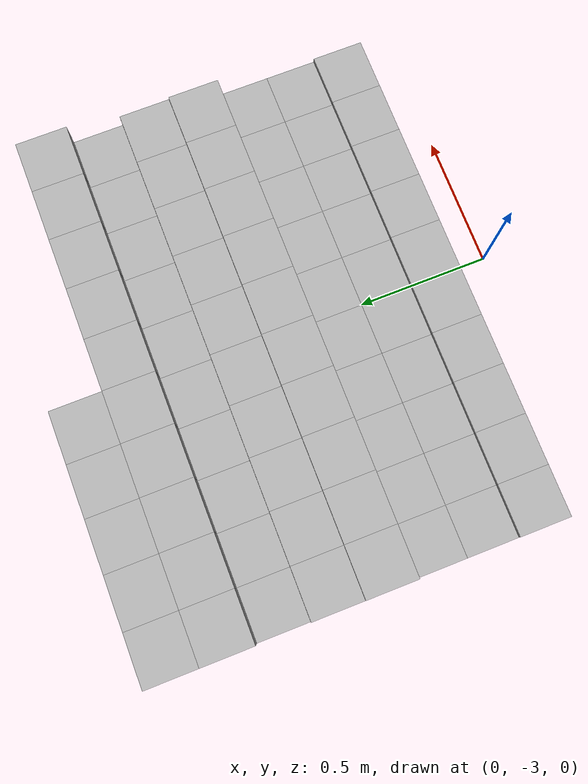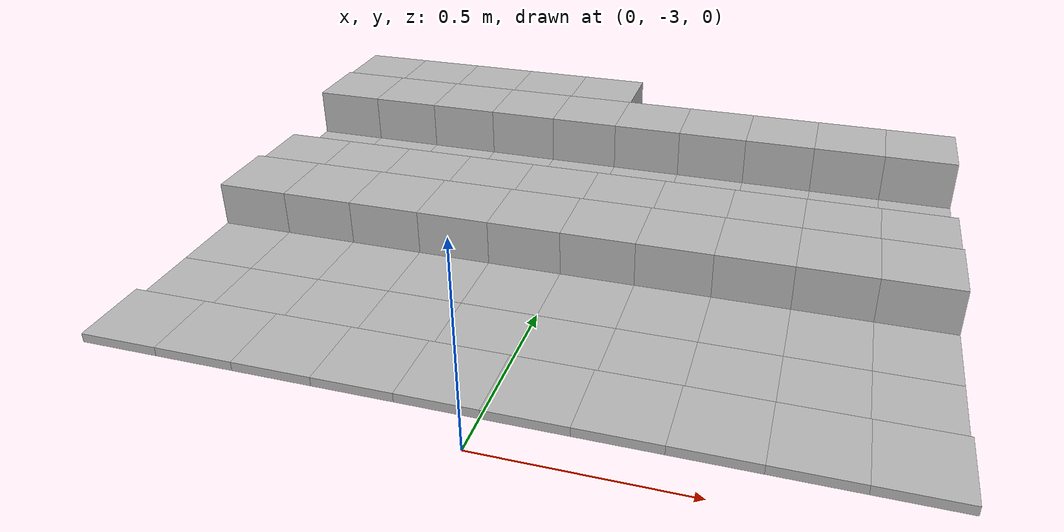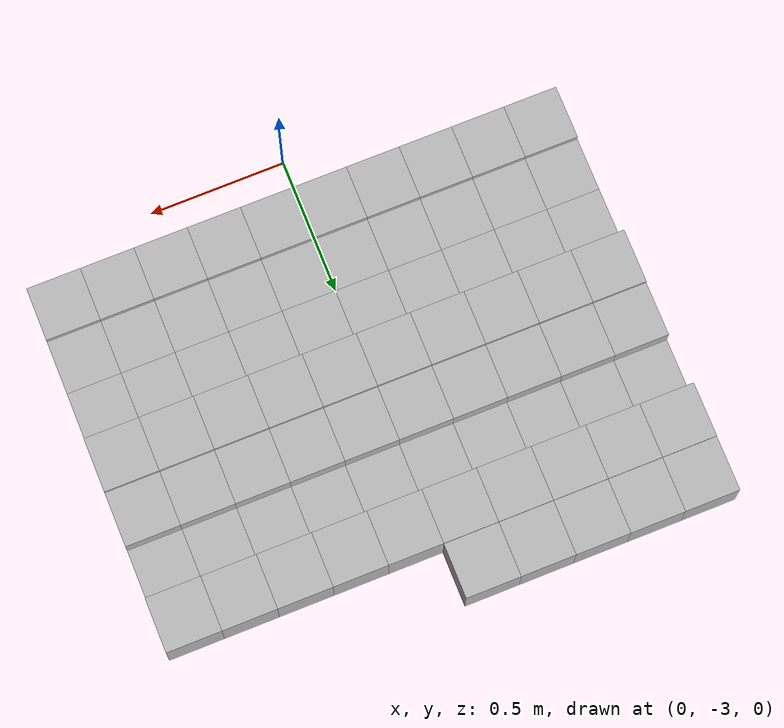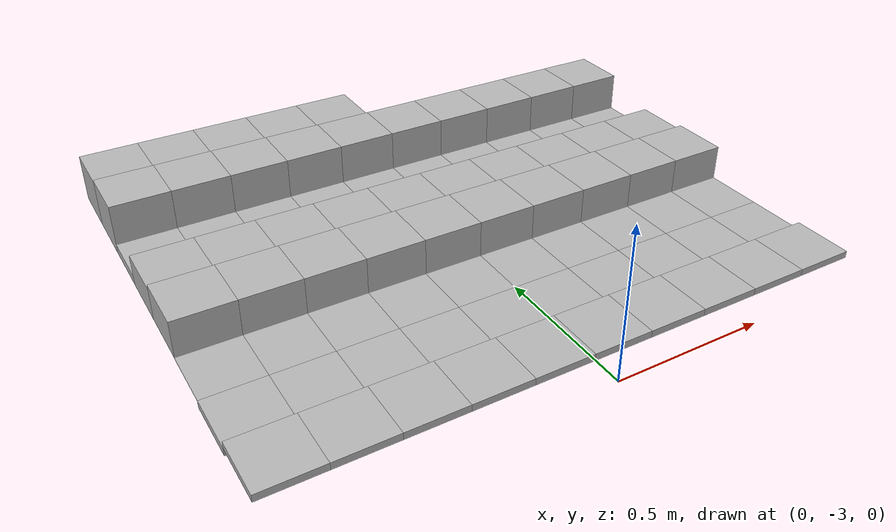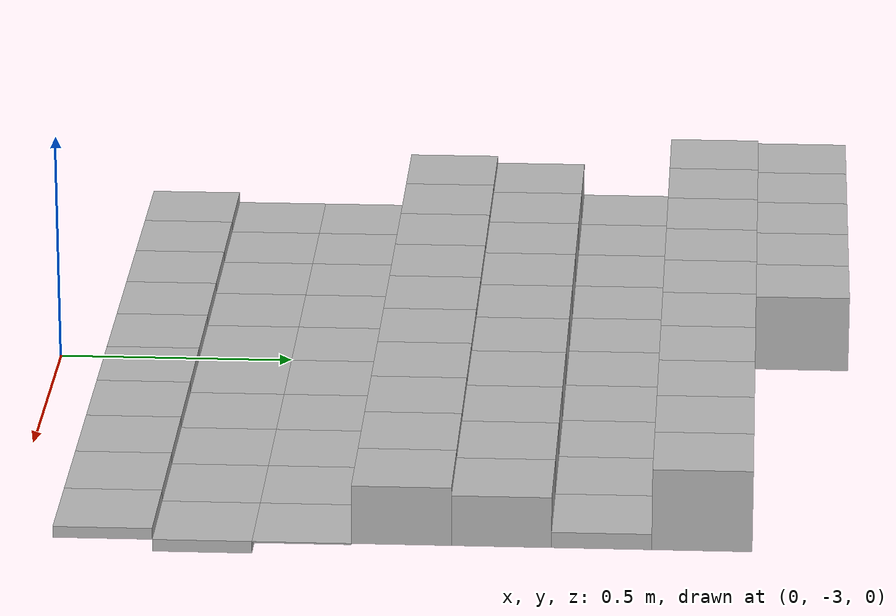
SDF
<sdf version="1.6">
 <model name="Terrain">
  <static>true</static>
  <link name="box_7_0">
   <pose>-0.9 -1.4 0.0830524998961 0 0 0</pose>
   <inertial>
    <mass>1.0</mass>
    <inertia><ixx>0.0</ixx><ixy>0.0</ixy><ixz>0.0</ixz><iyy>0.0</iyy><iyz>0.0</iyz><izz>0.0</izz></inertia>
   </inertial>
   <collision name="collision"><geometry><box><size>0.2 0.2 0.166104999792</size></box></geometry></collision>
   <visual name="visual"><geometry><box><size>0.2 0.2 0.166104999792</size></box></geometry></visual>
  </link>
  <link name="box_7_1">
   <pose>-0.7 -1.4 0.0830524998961 0 0 0</pose>
   <inertial>
    <mass>1.0</mass>
    <inertia><ixx>0.0</ixx><ixy>0.0</ixy><ixz>0.0</ixz><iyy>0.0</iyy><iyz>0.0</iyz><izz>0.0</izz></inertia>
   </inertial>
   <collision name="collision"><geometry><box><size>0.2 0.2 0.166104999792</size></box></geometry></collision>
   <visual name="visual"><geometry><box><size>0.2 0.2 0.166104999792</size></box></geometry></visual>
  </link>
  <link name="box_7_2">
   <pose>-0.5 -1.4 0.0830524998961 0 0 0</pose>
   <inertial>
    <mass>1.0</mass>
    <inertia><ixx>0.0</ixx><ixy>0.0</ixy><ixz>0.0</ixz><iyy>0.0</iyy><iyz>0.0</iyz><izz>0.0</izz></inertia>
   </inertial>
   <collision name="collision"><geometry><box><size>0.2 0.2 0.166104999792</size></box></geometry></collision>
   <visual name="visual"><geometry><box><size>0.2 0.2 0.166104999792</size></box></geometry></visual>
  </link>
  <link name="box_7_3">
   <pose>-0.3 -1.4 0.0830524998961 0 0 0</pose>
   <inertial>
    <mass>1.0</mass>
    <inertia><ixx>0.0</ixx><ixy>0.0</ixy><ixz>0.0</ixz><iyy>0.0</iyy><iyz>0.0</iyz><izz>0.0</izz></inertia>
   </inertial>
   <collision name="collision"><geometry><box><size>0.2 0.2 0.166104999792</size></box></geometry></collision>
   <visual name="visual"><geometry><box><size>0.2 0.2 0.166104999792</size></box></geometry></visual>
  </link>
  <link name="box_7_4">
   <pose>-0.1 -1.4 0.0830524998961 0 0 0</pose>
   <inertial>
    <mass>1.0</mass>
    <inertia><ixx>0.0</ixx><ixy>0.0</ixy><ixz>0.0</ixz><iyy>0.0</iyy><iyz>0.0</iyz><izz>0.0</izz></inertia>
   </inertial>
   <collision name="collision"><geometry><box><size>0.2 0.2 0.166104999792</size></box></geometry></collision>
   <visual name="visual"><geometry><box><size>0.2 0.2 0.166104999792</size></box></geometry></visual>
  </link>
  <link name="box_8_0">
   <pose>-0.9 -1.6 0.0862978659999 0 0 0</pose>
   <inertial>
    <mass>1.0</mass>
    <inertia><ixx>0.0</ixx><ixy>0.0</ixy><ixz>0.0</ixz><iyy>0.0</iyy><iyz>0.0</iyz><izz>0.0</izz></inertia>
   </inertial>
   <collision name="collision"><geometry><box><size>0.2 0.2 0.172595732</size></box></geometry></collision>
   <visual name="visual"><geometry><box><size>0.2 0.2 0.172595732</size></box></geometry></visual>
  </link>
  <link name="box_8_1">
   <pose>-0.7 -1.6 0.0862978659999 0 0 0</pose>
   <inertial>
    <mass>1.0</mass>
    <inertia><ixx>0.0</ixx><ixy>0.0</ixy><ixz>0.0</ixz><iyy>0.0</iyy><iyz>0.0</iyz><izz>0.0</izz></inertia>
   </inertial>
   <collision name="collision"><geometry><box><size>0.2 0.2 0.172595732</size></box></geometry></collision>
   <visual name="visual"><geometry><box><size>0.2 0.2 0.172595732</size></box></geometry></visual>
  </link>
  <link name="box_8_2">
   <pose>-0.5 -1.6 0.0862978659999 0 0 0</pose>
   <inertial>
    <mass>1.0</mass>
    <inertia><ixx>0.0</ixx><ixy>0.0</ixy><ixz>0.0</ixz><iyy>0.0</iyy><iyz>0.0</iyz><izz>0.0</izz></inertia>
   </inertial>
   <collision name="collision"><geometry><box><size>0.2 0.2 0.172595732</size></box></geometry></collision>
   <visual name="visual"><geometry><box><size>0.2 0.2 0.172595732</size></box></geometry></visual>
  </link>
  <link name="box_8_3">
   <pose>-0.3 -1.6 0.0862978659999 0 0 0</pose>
   <inertial>
    <mass>1.0</mass>
    <inertia><ixx>0.0</ixx><ixy>0.0</ixy><ixz>0.0</ixz><iyy>0.0</iyy><iyz>0.0</iyz><izz>0.0</izz></inertia>
   </inertial>
   <collision name="collision"><geometry><box><size>0.2 0.2 0.172595732</size></box></geometry></collision>
   <visual name="visual"><geometry><box><size>0.2 0.2 0.172595732</size></box></geometry></visual>
  </link>
  <link name="box_8_4">
   <pose>-0.1 -1.6 0.0862978659999 0 0 0</pose>
   <inertial>
    <mass>1.0</mass>
    <inertia><ixx>0.0</ixx><ixy>0.0</ixy><ixz>0.0</ixz><iyy>0.0</iyy><iyz>0.0</iyz><izz>0.0</izz></inertia>
   </inertial>
   <collision name="collision"><geometry><box><size>0.2 0.2 0.172595732</size></box></geometry></collision>
   <visual name="visual"><geometry><box><size>0.2 0.2 0.172595732</size></box></geometry></visual>
  </link>
  <link name="box_8_5">
   <pose>0.1 -1.6 0.0862978659999 0 0 0</pose>
   <inertial>
    <mass>1.0</mass>
    <inertia><ixx>0.0</ixx><ixy>0.0</ixy><ixz>0.0</ixz><iyy>0.0</iyy><iyz>0.0</iyz><izz>0.0</izz></inertia>
   </inertial>
   <collision name="collision"><geometry><box><size>0.2 0.2 0.172595732</size></box></geometry></collision>
   <visual name="visual"><geometry><box><size>0.2 0.2 0.172595732</size></box></geometry></visual>
  </link>
  <link name="box_8_6">
   <pose>0.3 -1.6 0.0862978659999 0 0 0</pose>
   <inertial>
    <mass>1.0</mass>
    <inertia><ixx>0.0</ixx><ixy>0.0</ixy><ixz>0.0</ixz><iyy>0.0</iyy><iyz>0.0</iyz><izz>0.0</izz></inertia>
   </inertial>
   <collision name="collision"><geometry><box><size>0.2 0.2 0.172595732</size></box></geometry></collision>
   <visual name="visual"><geometry><box><size>0.2 0.2 0.172595732</size></box></geometry></visual>
  </link>
  <link name="box_8_7">
   <pose>0.5 -1.6 0.0862978659999 0 0 0</pose>
   <inertial>
    <mass>1.0</mass>
    <inertia><ixx>0.0</ixx><ixy>0.0</ixy><ixz>0.0</ixz><iyy>0.0</iyy><iyz>0.0</iyz><izz>0.0</izz></inertia>
   </inertial>
   <collision name="collision"><geometry><box><size>0.2 0.2 0.172595732</size></box></geometry></collision>
   <visual name="visual"><geometry><box><size>0.2 0.2 0.172595732</size></box></geometry></visual>
  </link>
  <link name="box_8_8">
   <pose>0.7 -1.6 0.0862978659999 0 0 0</pose>
   <inertial>
    <mass>1.0</mass>
    <inertia><ixx>0.0</ixx><ixy>0.0</ixy><ixz>0.0</ixz><iyy>0.0</iyy><iyz>0.0</iyz><izz>0.0</izz></inertia>
   </inertial>
   <collision name="collision"><geometry><box><size>0.2 0.2 0.172595732</size></box></geometry></collision>
   <visual name="visual"><geometry><box><size>0.2 0.2 0.172595732</size></box></geometry></visual>
  </link>
  <link name="box_8_9">
   <pose>0.9 -1.6 0.0862978659999 0 0 0</pose>
   <inertial>
    <mass>1.0</mass>
    <inertia><ixx>0.0</ixx><ixy>0.0</ixy><ixz>0.0</ixz><iyy>0.0</iyy><iyz>0.0</iyz><izz>0.0</izz></inertia>
   </inertial>
   <collision name="collision"><geometry><box><size>0.2 0.2 0.172595732</size></box></geometry></collision>
   <visual name="visual"><geometry><box><size>0.2 0.2 0.172595732</size></box></geometry></visual>
  </link>
  <link name="box_9_0">
   <pose>-0.9 -1.8 0.016583812479 0 0 0</pose>
   <inertial>
    <mass>1.0</mass>
    <inertia><ixx>0.0</ixx><ixy>0.0</ixy><ixz>0.0</ixz><iyy>0.0</iyy><iyz>0.0</iyz><izz>0.0</izz></inertia>
   </inertial>
   <collision name="collision"><geometry><box><size>0.2 0.2 0.0331676249579</size></box></geometry></collision>
   <visual name="visual"><geometry><box><size>0.2 0.2 0.0331676249579</size></box></geometry></visual>
  </link>
  <link name="box_9_1">
   <pose>-0.7 -1.8 0.016583812479 0 0 0</pose>
   <inertial>
    <mass>1.0</mass>
    <inertia><ixx>0.0</ixx><ixy>0.0</ixy><ixz>0.0</ixz><iyy>0.0</iyy><iyz>0.0</iyz><izz>0.0</izz></inertia>
   </inertial>
   <collision name="collision"><geometry><box><size>0.2 0.2 0.0331676249579</size></box></geometry></collision>
   <visual name="visual"><geometry><box><size>0.2 0.2 0.0331676249579</size></box></geometry></visual>
  </link>
  <link name="box_9_2">
   <pose>-0.5 -1.8 0.016583812479 0 0 0</pose>
   <inertial>
    <mass>1.0</mass>
    <inertia><ixx>0.0</ixx><ixy>0.0</ixy><ixz>0.0</ixz><iyy>0.0</iyy><iyz>0.0</iyz><izz>0.0</izz></inertia>
   </inertial>
   <collision name="collision"><geometry><box><size>0.2 0.2 0.0331676249579</size></box></geometry></collision>
   <visual name="visual"><geometry><box><size>0.2 0.2 0.0331676249579</size></box></geometry></visual>
  </link>
  <link name="box_9_3">
   <pose>-0.3 -1.8 0.016583812479 0 0 0</pose>
   <inertial>
    <mass>1.0</mass>
    <inertia><ixx>0.0</ixx><ixy>0.0</ixy><ixz>0.0</ixz><iyy>0.0</iyy><iyz>0.0</iyz><izz>0.0</izz></inertia>
   </inertial>
   <collision name="collision"><geometry><box><size>0.2 0.2 0.0331676249579</size></box></geometry></collision>
   <visual name="visual"><geometry><box><size>0.2 0.2 0.0331676249579</size></box></geometry></visual>
  </link>
  <link name="box_9_4">
   <pose>-0.1 -1.8 0.016583812479 0 0 0</pose>
   <inertial>
    <mass>1.0</mass>
    <inertia><ixx>0.0</ixx><ixy>0.0</ixy><ixz>0.0</ixz><iyy>0.0</iyy><iyz>0.0</iyz><izz>0.0</izz></inertia>
   </inertial>
   <collision name="collision"><geometry><box><size>0.2 0.2 0.0331676249579</size></box></geometry></collision>
   <visual name="visual"><geometry><box><size>0.2 0.2 0.0331676249579</size></box></geometry></visual>
  </link>
  <link name="box_9_5">
   <pose>0.1 -1.8 0.016583812479 0 0 0</pose>
   <inertial>
    <mass>1.0</mass>
    <inertia><ixx>0.0</ixx><ixy>0.0</ixy><ixz>0.0</ixz><iyy>0.0</iyy><iyz>0.0</iyz><izz>0.0</izz></inertia>
   </inertial>
   <collision name="collision"><geometry><box><size>0.2 0.2 0.0331676249579</size></box></geometry></collision>
   <visual name="visual"><geometry><box><size>0.2 0.2 0.0331676249579</size></box></geometry></visual>
  </link>
  <link name="box_9_6">
   <pose>0.3 -1.8 0.016583812479 0 0 0</pose>
   <inertial>
    <mass>1.0</mass>
    <inertia><ixx>0.0</ixx><ixy>0.0</ixy><ixz>0.0</ixz><iyy>0.0</iyy><iyz>0.0</iyz><izz>0.0</izz></inertia>
   </inertial>
   <collision name="collision"><geometry><box><size>0.2 0.2 0.0331676249579</size></box></geometry></collision>
   <visual name="visual"><geometry><box><size>0.2 0.2 0.0331676249579</size></box></geometry></visual>
  </link>
  <link name="box_9_7">
   <pose>0.5 -1.8 0.016583812479 0 0 0</pose>
   <inertial>
    <mass>1.0</mass>
    <inertia><ixx>0.0</ixx><ixy>0.0</ixy><ixz>0.0</ixz><iyy>0.0</iyy><iyz>0.0</iyz><izz>0.0</izz></inertia>
   </inertial>
   <collision name="collision"><geometry><box><size>0.2 0.2 0.0331676249579</size></box></geometry></collision>
   <visual name="visual"><geometry><box><size>0.2 0.2 0.0331676249579</size></box></geometry></visual>
  </link>
  <link name="box_9_8">
   <pose>0.7 -1.8 0.016583812479 0 0 0</pose>
   <inertial>
    <mass>1.0</mass>
    <inertia><ixx>0.0</ixx><ixy>0.0</ixy><ixz>0.0</ixz><iyy>0.0</iyy><iyz>0.0</iyz><izz>0.0</izz></inertia>
   </inertial>
   <collision name="collision"><geometry><box><size>0.2 0.2 0.0331676249579</size></box></geometry></collision>
   <visual name="visual"><geometry><box><size>0.2 0.2 0.0331676249579</size></box></geometry></visual>
  </link>
  <link name="box_9_9">
   <pose>0.9 -1.8 0.016583812479 0 0 0</pose>
   <inertial>
    <mass>1.0</mass>
    <inertia><ixx>0.0</ixx><ixy>0.0</ixy><ixz>0.0</ixz><iyy>0.0</iyy><iyz>0.0</iyz><izz>0.0</izz></inertia>
   </inertial>
   <collision name="collision"><geometry><box><size>0.2 0.2 0.0331676249579</size></box></geometry></collision>
   <visual name="visual"><geometry><box><size>0.2 0.2 0.0331676249579</size></box></geometry></visual>
  </link>
  <link name="box_10_0">
   <pose>-0.9 -2.0 0.0538792934214 0 0 0</pose>
   <inertial>
    <mass>1.0</mass>
    <inertia><ixx>0.0</ixx><ixy>0.0</ixy><ixz>0.0</ixz><iyy>0.0</iyy><iyz>0.0</iyz><izz>0.0</izz></inertia>
   </inertial>
   <collision name="collision"><geometry><box><size>0.2 0.2 0.107758586843</size></box></geometry></collision>
   <visual name="visual"><geometry><box><size>0.2 0.2 0.107758586843</size></box></geometry></visual>
  </link>
  <link name="box_10_1">
   <pose>-0.7 -2.0 0.0538792934214 0 0 0</pose>
   <inertial>
    <mass>1.0</mass>
    <inertia><ixx>0.0</ixx><ixy>0.0</ixy><ixz>0.0</ixz><iyy>0.0</iyy><iyz>0.0</iyz><izz>0.0</izz></inertia>
   </inertial>
   <collision name="collision"><geometry><box><size>0.2 0.2 0.107758586843</size></box></geometry></collision>
   <visual name="visual"><geometry><box><size>0.2 0.2 0.107758586843</size></box></geometry></visual>
  </link>
  <link name="box_10_2">
   <pose>-0.5 -2.0 0.0538792934214 0 0 0</pose>
   <inertial>
    <mass>1.0</mass>
    <inertia><ixx>0.0</ixx><ixy>0.0</ixy><ixz>0.0</ixz><iyy>0.0</iyy><iyz>0.0</iyz><izz>0.0</izz></inertia>
   </inertial>
   <collision name="collision"><geometry><box><size>0.2 0.2 0.107758586843</size></box></geometry></collision>
   <visual name="visual"><geometry><box><size>0.2 0.2 0.107758586843</size></box></geometry></visual>
  </link>
  <link name="box_10_3">
   <pose>-0.3 -2.0 0.0538792934214 0 0 0</pose>
   <inertial>
    <mass>1.0</mass>
    <inertia><ixx>0.0</ixx><ixy>0.0</ixy><ixz>0.0</ixz><iyy>0.0</iyy><iyz>0.0</iyz><izz>0.0</izz></inertia>
   </inertial>
   <collision name="collision"><geometry><box><size>0.2 0.2 0.107758586843</size></box></geometry></collision>
   <visual name="visual"><geometry><box><size>0.2 0.2 0.107758586843</size></box></geometry></visual>
  </link>
  <link name="box_10_4">
   <pose>-0.1 -2.0 0.0538792934214 0 0 0</pose>
   <inertial>
    <mass>1.0</mass>
    <inertia><ixx>0.0</ixx><ixy>0.0</ixy><ixz>0.0</ixz><iyy>0.0</iyy><iyz>0.0</iyz><izz>0.0</izz></inertia>
   </inertial>
   <collision name="collision"><geometry><box><size>0.2 0.2 0.107758586843</size></box></geometry></collision>
   <visual name="visual"><geometry><box><size>0.2 0.2 0.107758586843</size></box></geometry></visual>
  </link>
  <link name="box_10_5">
   <pose>0.1 -2.0 0.0538792934214 0 0 0</pose>
   <inertial>
    <mass>1.0</mass>
    <inertia><ixx>0.0</ixx><ixy>0.0</ixy><ixz>0.0</ixz><iyy>0.0</iyy><iyz>0.0</iyz><izz>0.0</izz></inertia>
   </inertial>
   <collision name="collision"><geometry><box><size>0.2 0.2 0.107758586843</size></box></geometry></collision>
   <visual name="visual"><geometry><box><size>0.2 0.2 0.107758586843</size></box></geometry></visual>
  </link>
  <link name="box_10_6">
   <pose>0.3 -2.0 0.0538792934214 0 0 0</pose>
   <inertial>
    <mass>1.0</mass>
    <inertia><ixx>0.0</ixx><ixy>0.0</ixy><ixz>0.0</ixz><iyy>0.0</iyy><iyz>0.0</iyz><izz>0.0</izz></inertia>
   </inertial>
   <collision name="collision"><geometry><box><size>0.2 0.2 0.107758586843</size></box></geometry></collision>
   <visual name="visual"><geometry><box><size>0.2 0.2 0.107758586843</size></box></geometry></visual>
  </link>
  <link name="box_10_7">
   <pose>0.5 -2.0 0.0538792934214 0 0 0</pose>
   <inertial>
    <mass>1.0</mass>
    <inertia><ixx>0.0</ixx><ixy>0.0</ixy><ixz>0.0</ixz><iyy>0.0</iyy><iyz>0.0</iyz><izz>0.0</izz></inertia>
   </inertial>
   <collision name="collision"><geometry><box><size>0.2 0.2 0.107758586843</size></box></geometry></collision>
   <visual name="visual"><geometry><box><size>0.2 0.2 0.107758586843</size></box></geometry></visual>
  </link>
  <link name="box_10_8">
   <pose>0.7 -2.0 0.0538792934214 0 0 0</pose>
   <inertial>
    <mass>1.0</mass>
    <inertia><ixx>0.0</ixx><ixy>0.0</ixy><ixz>0.0</ixz><iyy>0.0</iyy><iyz>0.0</iyz><izz>0.0</izz></inertia>
   </inertial>
   <collision name="collision"><geometry><box><size>0.2 0.2 0.107758586843</size></box></geometry></collision>
   <visual name="visual"><geometry><box><size>0.2 0.2 0.107758586843</size></box></geometry></visual>
  </link>
  <link name="box_10_9">
   <pose>0.9 -2.0 0.0538792934214 0 0 0</pose>
   <inertial>
    <mass>1.0</mass>
    <inertia><ixx>0.0</ixx><ixy>0.0</ixy><ixz>0.0</ixz><iyy>0.0</iyy><iyz>0.0</iyz><izz>0.0</izz></inertia>
   </inertial>
   <collision name="collision"><geometry><box><size>0.2 0.2 0.107758586843</size></box></geometry></collision>
   <visual name="visual"><geometry><box><size>0.2 0.2 0.107758586843</size></box></geometry></visual>
  </link>
  <link name="box_11_0">
   <pose>-0.9 -2.2 0.0621558533466 0 0 0</pose>
   <inertial>
    <mass>1.0</mass>
    <inertia><ixx>0.0</ixx><ixy>0.0</ixy><ixz>0.0</ixz><iyy>0.0</iyy><iyz>0.0</iyz><izz>0.0</izz></inertia>
   </inertial>
   <collision name="collision"><geometry><box><size>0.2 0.2 0.124311706693</size></box></geometry></collision>
   <visual name="visual"><geometry><box><size>0.2 0.2 0.124311706693</size></box></geometry></visual>
  </link>
  <link name="box_11_1">
   <pose>-0.7 -2.2 0.0621558533466 0 0 0</pose>
   <inertial>
    <mass>1.0</mass>
    <inertia><ixx>0.0</ixx><ixy>0.0</ixy><ixz>0.0</ixz><iyy>0.0</iyy><iyz>0.0</iyz><izz>0.0</izz></inertia>
   </inertial>
   <collision name="collision"><geometry><box><size>0.2 0.2 0.124311706693</size></box></geometry></collision>
   <visual name="visual"><geometry><box><size>0.2 0.2 0.124311706693</size></box></geometry></visual>
  </link>
  <link name="box_11_2">
   <pose>-0.5 -2.2 0.0621558533466 0 0 0</pose>
   <inertial>
    <mass>1.0</mass>
    <inertia><ixx>0.0</ixx><ixy>0.0</ixy><ixz>0.0</ixz><iyy>0.0</iyy><iyz>0.0</iyz><izz>0.0</izz></inertia>
   </inertial>
   <collision name="collision"><geometry><box><size>0.2 0.2 0.124311706693</size></box></geometry></collision>
   <visual name="visual"><geometry><box><size>0.2 0.2 0.124311706693</size></box></geometry></visual>
  </link>
  <link name="box_11_3">
   <pose>-0.3 -2.2 0.0621558533466 0 0 0</pose>
   <inertial>
    <mass>1.0</mass>
    <inertia><ixx>0.0</ixx><ixy>0.0</ixy><ixz>0.0</ixz><iyy>0.0</iyy><iyz>0.0</iyz><izz>0.0</izz></inertia>
   </inertial>
   <collision name="collision"><geometry><box><size>0.2 0.2 0.124311706693</size></box></geometry></collision>
   <visual name="visual"><geometry><box><size>0.2 0.2 0.124311706693</size></box></geometry></visual>
  </link>
  <link name="box_11_4">
   <pose>-0.1 -2.2 0.0621558533466 0 0 0</pose>
   <inertial>
    <mass>1.0</mass>
    <inertia><ixx>0.0</ixx><ixy>0.0</ixy><ixz>0.0</ixz><iyy>0.0</iyy><iyz>0.0</iyz><izz>0.0</izz></inertia>
   </inertial>
   <collision name="collision"><geometry><box><size>0.2 0.2 0.124311706693</size></box></geometry></collision>
   <visual name="visual"><geometry><box><size>0.2 0.2 0.124311706693</size></box></geometry></visual>
  </link>
  <link name="box_11_5">
   <pose>0.1 -2.2 0.0621558533466 0 0 0</pose>
   <inertial>
    <mass>1.0</mass>
    <inertia><ixx>0.0</ixx><ixy>0.0</ixy><ixz>0.0</ixz><iyy>0.0</iyy><iyz>0.0</iyz><izz>0.0</izz></inertia>
   </inertial>
   <collision name="collision"><geometry><box><size>0.2 0.2 0.124311706693</size></box></geometry></collision>
   <visual name="visual"><geometry><box><size>0.2 0.2 0.124311706693</size></box></geometry></visual>
  </link>
  <link name="box_11_6">
   <pose>0.3 -2.2 0.0621558533466 0 0 0</pose>
   <inertial>
    <mass>1.0</mass>
    <inertia><ixx>0.0</ixx><ixy>0.0</ixy><ixz>0.0</ixz><iyy>0.0</iyy><iyz>0.0</iyz><izz>0.0</izz></inertia>
   </inertial>
   <collision name="collision"><geometry><box><size>0.2 0.2 0.124311706693</size></box></geometry></collision>
   <visual name="visual"><geometry><box><size>0.2 0.2 0.124311706693</size></box></geometry></visual>
  </link>
  <link name="box_11_7">
   <pose>0.5 -2.2 0.0621558533466 0 0 0</pose>
   <inertial>
    <mass>1.0</mass>
    <inertia><ixx>0.0</ixx><ixy>0.0</ixy><ixz>0.0</ixz><iyy>0.0</iyy><iyz>0.0</iyz><izz>0.0</izz></inertia>
   </inertial>
   <collision name="collision"><geometry><box><size>0.2 0.2 0.124311706693</size></box></geometry></collision>
   <visual name="visual"><geometry><box><size>0.2 0.2 0.124311706693</size></box></geometry></visual>
  </link>
  <link name="box_11_8">
   <pose>0.7 -2.2 0.0621558533466 0 0 0</pose>
   <inertial>
    <mass>1.0</mass>
    <inertia><ixx>0.0</ixx><ixy>0.0</ixy><ixz>0.0</ixz><iyy>0.0</iyy><iyz>0.0</iyz><izz>0.0</izz></inertia>
   </inertial>
   <collision name="collision"><geometry><box><size>0.2 0.2 0.124311706693</size></box></geometry></collision>
   <visual name="visual"><geometry><box><size>0.2 0.2 0.124311706693</size></box></geometry></visual>
  </link>
  <link name="box_11_9">
   <pose>0.9 -2.2 0.0621558533466 0 0 0</pose>
   <inertial>
    <mass>1.0</mass>
    <inertia><ixx>0.0</ixx><ixy>0.0</ixy><ixz>0.0</ixz><iyy>0.0</iyy><iyz>0.0</iyz><izz>0.0</izz></inertia>
   </inertial>
   <collision name="collision"><geometry><box><size>0.2 0.2 0.124311706693</size></box></geometry></collision>
   <visual name="visual"><geometry><box><size>0.2 0.2 0.124311706693</size></box></geometry></visual>
  </link>
  <link name="box_12_0">
   <pose>-0.9 -2.4 -0.0013841057599 0 0 0</pose>
   <inertial>
    <mass>1.0</mass>
    <inertia><ixx>0.0</ixx><ixy>0.0</ixy><ixz>0.0</ixz><iyy>0.0</iyy><iyz>0.0</iyz><izz>0.0</izz></inertia>
   </inertial>
   <collision name="collision"><geometry><box><size>0.2 0.2 -0.00276821151979</size></box></geometry></collision>
   <visual name="visual"><geometry><box><size>0.2 0.2 -0.00276821151979</size></box></geometry></visual>
  </link>
  <link name="box_12_1">
   <pose>-0.7 -2.4 -0.0013841057599 0 0 0</pose>
   <inertial>
    <mass>1.0</mass>
    <inertia><ixx>0.0</ixx><ixy>0.0</ixy><ixz>0.0</ixz><iyy>0.0</iyy><iyz>0.0</iyz><izz>0.0</izz></inertia>
   </inertial>
   <collision name="collision"><geometry><box><size>0.2 0.2 -0.00276821151979</size></box></geometry></collision>
   <visual name="visual"><geometry><box><size>0.2 0.2 -0.00276821151979</size></box></geometry></visual>
  </link>
  <link name="box_12_2">
   <pose>-0.5 -2.4 -0.0013841057599 0 0 0</pose>
   <inertial>
    <mass>1.0</mass>
    <inertia><ixx>0.0</ixx><ixy>0.0</ixy><ixz>0.0</ixz><iyy>0.0</iyy><iyz>0.0</iyz><izz>0.0</izz></inertia>
   </inertial>
   <collision name="collision"><geometry><box><size>0.2 0.2 -0.00276821151979</size></box></geometry></collision>
   <visual name="visual"><geometry><box><size>0.2 0.2 -0.00276821151979</size></box></geometry></visual>
  </link>
  <link name="box_12_3">
   <pose>-0.3 -2.4 -0.0013841057599 0 0 0</pose>
   <inertial>
    <mass>1.0</mass>
    <inertia><ixx>0.0</ixx><ixy>0.0</ixy><ixz>0.0</ixz><iyy>0.0</iyy><iyz>0.0</iyz><izz>0.0</izz></inertia>
   </inertial>
   <collision name="collision"><geometry><box><size>0.2 0.2 -0.00276821151979</size></box></geometry></collision>
   <visual name="visual"><geometry><box><size>0.2 0.2 -0.00276821151979</size></box></geometry></visual>
  </link>
  <link name="box_12_4">
   <pose>-0.1 -2.4 -0.0013841057599 0 0 0</pose>
   <inertial>
    <mass>1.0</mass>
    <inertia><ixx>0.0</ixx><ixy>0.0</ixy><ixz>0.0</ixz><iyy>0.0</iyy><iyz>0.0</iyz><izz>0.0</izz></inertia>
   </inertial>
   <collision name="collision"><geometry><box><size>0.2 0.2 -0.00276821151979</size></box></geometry></collision>
   <visual name="visual"><geometry><box><size>0.2 0.2 -0.00276821151979</size></box></geometry></visual>
  </link>
  <link name="box_12_5">
   <pose>0.1 -2.4 -0.0013841057599 0 0 0</pose>
   <inertial>
    <mass>1.0</mass>
    <inertia><ixx>0.0</ixx><ixy>0.0</ixy><ixz>0.0</ixz><iyy>0.0</iyy><iyz>0.0</iyz><izz>0.0</izz></inertia>
   </inertial>
   <collision name="collision"><geometry><box><size>0.2 0.2 -0.00276821151979</size></box></geometry></collision>
   <visual name="visual"><geometry><box><size>0.2 0.2 -0.00276821151979</size></box></geometry></visual>
  </link>
  <link name="box_12_6">
   <pose>0.3 -2.4 -0.0013841057599 0 0 0</pose>
   <inertial>
    <mass>1.0</mass>
    <inertia><ixx>0.0</ixx><ixy>0.0</ixy><ixz>0.0</ixz><iyy>0.0</iyy><iyz>0.0</iyz><izz>0.0</izz></inertia>
   </inertial>
   <collision name="collision"><geometry><box><size>0.2 0.2 -0.00276821151979</size></box></geometry></collision>
   <visual name="visual"><geometry><box><size>0.2 0.2 -0.00276821151979</size></box></geometry></visual>
  </link>
  <link name="box_12_7">
   <pose>0.5 -2.4 -0.0013841057599 0 0 0</pose>
   <inertial>
    <mass>1.0</mass>
    <inertia><ixx>0.0</ixx><ixy>0.0</ixy><ixz>0.0</ixz><iyy>0.0</iyy><iyz>0.0</iyz><izz>0.0</izz></inertia>
   </inertial>
   <collision name="collision"><geometry><box><size>0.2 0.2 -0.00276821151979</size></box></geometry></collision>
   <visual name="visual"><geometry><box><size>0.2 0.2 -0.00276821151979</size></box></geometry></visual>
  </link>
  <link name="box_12_8">
   <pose>0.7 -2.4 -0.0013841057599 0 0 0</pose>
   <inertial>
    <mass>1.0</mass>
    <inertia><ixx>0.0</ixx><ixy>0.0</ixy><ixz>0.0</ixz><iyy>0.0</iyy><iyz>0.0</iyz><izz>0.0</izz></inertia>
   </inertial>
   <collision name="collision"><geometry><box><size>0.2 0.2 -0.00276821151979</size></box></geometry></collision>
   <visual name="visual"><geometry><box><size>0.2 0.2 -0.00276821151979</size></box></geometry></visual>
  </link>
  <link name="box_12_9">
   <pose>0.9 -2.4 -0.0013841057599 0 0 0</pose>
   <inertial>
    <mass>1.0</mass>
    <inertia><ixx>0.0</ixx><ixy>0.0</ixy><ixz>0.0</ixz><iyy>0.0</iyy><iyz>0.0</iyz><izz>0.0</izz></inertia>
   </inertial>
   <collision name="collision"><geometry><box><size>0.2 0.2 -0.00276821151979</size></box></geometry></collision>
   <visual name="visual"><geometry><box><size>0.2 0.2 -0.00276821151979</size></box></geometry></visual>
  </link>
  <link name="box_13_0">
   <pose>-0.9 -2.6 -0.0127718656155 0 0 0</pose>
   <inertial>
    <mass>1.0</mass>
    <inertia><ixx>0.0</ixx><ixy>0.0</ixy><ixz>0.0</ixz><iyy>0.0</iyy><iyz>0.0</iyz><izz>0.0</izz></inertia>
   </inertial>
   <collision name="collision"><geometry><box><size>0.2 0.2 -0.0255437312311</size></box></geometry></collision>
   <visual name="visual"><geometry><box><size>0.2 0.2 -0.0255437312311</size></box></geometry></visual>
  </link>
  <link name="box_13_1">
   <pose>-0.7 -2.6 -0.0127718656155 0 0 0</pose>
   <inertial>
    <mass>1.0</mass>
    <inertia><ixx>0.0</ixx><ixy>0.0</ixy><ixz>0.0</ixz><iyy>0.0</iyy><iyz>0.0</iyz><izz>0.0</izz></inertia>
   </inertial>
   <collision name="collision"><geometry><box><size>0.2 0.2 -0.0255437312311</size></box></geometry></collision>
   <visual name="visual"><geometry><box><size>0.2 0.2 -0.0255437312311</size></box></geometry></visual>
  </link>
  <link name="box_13_2">
   <pose>-0.5 -2.6 -0.0127718656155 0 0 0</pose>
   <inertial>
    <mass>1.0</mass>
    <inertia><ixx>0.0</ixx><ixy>0.0</ixy><ixz>0.0</ixz><iyy>0.0</iyy><iyz>0.0</iyz><izz>0.0</izz></inertia>
   </inertial>
   <collision name="collision"><geometry><box><size>0.2 0.2 -0.0255437312311</size></box></geometry></collision>
   <visual name="visual"><geometry><box><size>0.2 0.2 -0.0255437312311</size></box></geometry></visual>
  </link>
  <link name="box_13_3">
   <pose>-0.3 -2.6 -0.0127718656155 0 0 0</pose>
   <inertial>
    <mass>1.0</mass>
    <inertia><ixx>0.0</ixx><ixy>0.0</ixy><ixz>0.0</ixz><iyy>0.0</iyy><iyz>0.0</iyz><izz>0.0</izz></inertia>
   </inertial>
   <collision name="collision"><geometry><box><size>0.2 0.2 -0.0255437312311</size></box></geometry></collision>
   <visual name="visual"><geometry><box><size>0.2 0.2 -0.0255437312311</size></box></geometry></visual>
  </link>
  <link name="box_13_4">
   <pose>-0.1 -2.6 -0.0127718656155 0 0 0</pose>
   <inertial>
    <mass>1.0</mass>
    <inertia><ixx>0.0</ixx><ixy>0.0</ixy><ixz>0.0</ixz><iyy>0.0</iyy><iyz>0.0</iyz><izz>0.0</izz></inertia>
   </inertial>
   <collision name="collision"><geometry><box><size>0.2 0.2 -0.0255437312311</size></box></geometry></collision>
   <visual name="visual"><geometry><box><size>0.2 0.2 -0.0255437312311</size></box></geometry></visual>
  </link>
  <link name="box_13_5">
   <pose>0.1 -2.6 -0.0127718656155 0 0 0</pose>
   <inertial>
    <mass>1.0</mass>
    <inertia><ixx>0.0</ixx><ixy>0.0</ixy><ixz>0.0</ixz><iyy>0.0</iyy><iyz>0.0</iyz><izz>0.0</izz></inertia>
   </inertial>
   <collision name="collision"><geometry><box><size>0.2 0.2 -0.0255437312311</size></box></geometry></collision>
   <visual name="visual"><geometry><box><size>0.2 0.2 -0.0255437312311</size></box></geometry></visual>
  </link>
  <link name="box_13_6">
   <pose>0.3 -2.6 -0.0127718656155 0 0 0</pose>
   <inertial>
    <mass>1.0</mass>
    <inertia><ixx>0.0</ixx><ixy>0.0</ixy><ixz>0.0</ixz><iyy>0.0</iyy><iyz>0.0</iyz><izz>0.0</izz></inertia>
   </inertial>
   <collision name="collision"><geometry><box><size>0.2 0.2 -0.0255437312311</size></box></geometry></collision>
   <visual name="visual"><geometry><box><size>0.2 0.2 -0.0255437312311</size></box></geometry></visual>
  </link>
  <link name="box_13_7">
   <pose>0.5 -2.6 -0.0127718656155 0 0 0</pose>
   <inertial>
    <mass>1.0</mass>
    <inertia><ixx>0.0</ixx><ixy>0.0</ixy><ixz>0.0</ixz><iyy>0.0</iyy><iyz>0.0</iyz><izz>0.0</izz></inertia>
   </inertial>
   <collision name="collision"><geometry><box><size>0.2 0.2 -0.0255437312311</size></box></geometry></collision>
   <visual name="visual"><geometry><box><size>0.2 0.2 -0.0255437312311</size></box></geometry></visual>
  </link>
  <link name="box_13_8">
   <pose>0.7 -2.6 -0.0127718656155 0 0 0</pose>
   <inertial>
    <mass>1.0</mass>
    <inertia><ixx>0.0</ixx><ixy>0.0</ixy><ixz>0.0</ixz><iyy>0.0</iyy><iyz>0.0</iyz><izz>0.0</izz></inertia>
   </inertial>
   <collision name="collision"><geometry><box><size>0.2 0.2 -0.0255437312311</size></box></geometry></collision>
   <visual name="visual"><geometry><box><size>0.2 0.2 -0.0255437312311</size></box></geometry></visual>
  </link>
  <link name="box_13_9">
   <pose>0.9 -2.6 -0.0127718656155 0 0 0</pose>
   <inertial>
    <mass>1.0</mass>
    <inertia><ixx>0.0</ixx><ixy>0.0</ixy><ixz>0.0</ixz><iyy>0.0</iyy><iyz>0.0</iyz><izz>0.0</izz></inertia>
   </inertial>
   <collision name="collision"><geometry><box><size>0.2 0.2 -0.0255437312311</size></box></geometry></collision>
   <visual name="visual"><geometry><box><size>0.2 0.2 -0.0255437312311</size></box></geometry></visual>
  </link>
  <link name="box_14_0">
   <pose>-0.9 -2.8 0.0118879303088 0 0 0</pose>
   <inertial>
    <mass>1.0</mass>
    <inertia><ixx>0.0</ixx><ixy>0.0</ixy><ixz>0.0</ixz><iyy>0.0</iyy><iyz>0.0</iyz><izz>0.0</izz></inertia>
   </inertial>
   <collision name="collision"><geometry><box><size>0.2 0.2 0.0237758606175</size></box></geometry></collision>
   <visual name="visual"><geometry><box><size>0.2 0.2 0.0237758606175</size></box></geometry></visual>
  </link>
  <link name="box_14_1">
   <pose>-0.7 -2.8 0.0118879303088 0 0 0</pose>
   <inertial>
    <mass>1.0</mass>
    <inertia><ixx>0.0</ixx><ixy>0.0</ixy><ixz>0.0</ixz><iyy>0.0</iyy><iyz>0.0</iyz><izz>0.0</izz></inertia>
   </inertial>
   <collision name="collision"><geometry><box><size>0.2 0.2 0.0237758606175</size></box></geometry></collision>
   <visual name="visual"><geometry><box><size>0.2 0.2 0.0237758606175</size></box></geometry></visual>
  </link>
  <link name="box_14_2">
   <pose>-0.5 -2.8 0.0118879303088 0 0 0</pose>
   <inertial>
    <mass>1.0</mass>
    <inertia><ixx>0.0</ixx><ixy>0.0</ixy><ixz>0.0</ixz><iyy>0.0</iyy><iyz>0.0</iyz><izz>0.0</izz></inertia>
   </inertial>
   <collision name="collision"><geometry><box><size>0.2 0.2 0.0237758606175</size></box></geometry></collision>
   <visual name="visual"><geometry><box><size>0.2 0.2 0.0237758606175</size></box></geometry></visual>
  </link>
  <link name="box_14_3">
   <pose>-0.3 -2.8 0.0118879303088 0 0 0</pose>
   <inertial>
    <mass>1.0</mass>
    <inertia><ixx>0.0</ixx><ixy>0.0</ixy><ixz>0.0</ixz><iyy>0.0</iyy><iyz>0.0</iyz><izz>0.0</izz></inertia>
   </inertial>
   <collision name="collision"><geometry><box><size>0.2 0.2 0.0237758606175</size></box></geometry></collision>
   <visual name="visual"><geometry><box><size>0.2 0.2 0.0237758606175</size></box></geometry></visual>
  </link>
  <link name="box_14_4">
   <pose>-0.1 -2.8 0.0118879303088 0 0 0</pose>
   <inertial>
    <mass>1.0</mass>
    <inertia><ixx>0.0</ixx><ixy>0.0</ixy><ixz>0.0</ixz><iyy>0.0</iyy><iyz>0.0</iyz><izz>0.0</izz></inertia>
   </inertial>
   <collision name="collision"><geometry><box><size>0.2 0.2 0.0237758606175</size></box></geometry></collision>
   <visual name="visual"><geometry><box><size>0.2 0.2 0.0237758606175</size></box></geometry></visual>
  </link>
  <link name="box_14_5">
   <pose>0.1 -2.8 0.0118879303088 0 0 0</pose>
   <inertial>
    <mass>1.0</mass>
    <inertia><ixx>0.0</ixx><ixy>0.0</ixy><ixz>0.0</ixz><iyy>0.0</iyy><iyz>0.0</iyz><izz>0.0</izz></inertia>
   </inertial>
   <collision name="collision"><geometry><box><size>0.2 0.2 0.0237758606175</size></box></geometry></collision>
   <visual name="visual"><geometry><box><size>0.2 0.2 0.0237758606175</size></box></geometry></visual>
  </link>
  <link name="box_14_6">
   <pose>0.3 -2.8 0.0118879303088 0 0 0</pose>
   <inertial>
    <mass>1.0</mass>
    <inertia><ixx>0.0</ixx><ixy>0.0</ixy><ixz>0.0</ixz><iyy>0.0</iyy><iyz>0.0</iyz><izz>0.0</izz></inertia>
   </inertial>
   <collision name="collision"><geometry><box><size>0.2 0.2 0.0237758606175</size></box></geometry></collision>
   <visual name="visual"><geometry><box><size>0.2 0.2 0.0237758606175</size></box></geometry></visual>
  </link>
  <link name="box_14_7">
   <pose>0.5 -2.8 0.0118879303088 0 0 0</pose>
   <inertial>
    <mass>1.0</mass>
    <inertia><ixx>0.0</ixx><ixy>0.0</ixy><ixz>0.0</ixz><iyy>0.0</iyy><iyz>0.0</iyz><izz>0.0</izz></inertia>
   </inertial>
   <collision name="collision"><geometry><box><size>0.2 0.2 0.0237758606175</size></box></geometry></collision>
   <visual name="visual"><geometry><box><size>0.2 0.2 0.0237758606175</size></box></geometry></visual>
  </link>
  <link name="box_14_8">
   <pose>0.7 -2.8 0.0118879303088 0 0 0</pose>
   <inertial>
    <mass>1.0</mass>
    <inertia><ixx>0.0</ixx><ixy>0.0</ixy><ixz>0.0</ixz><iyy>0.0</iyy><iyz>0.0</iyz><izz>0.0</izz></inertia>
   </inertial>
   <collision name="collision"><geometry><box><size>0.2 0.2 0.0237758606175</size></box></geometry></collision>
   <visual name="visual"><geometry><box><size>0.2 0.2 0.0237758606175</size></box></geometry></visual>
  </link>
  <link name="box_14_9">
   <pose>0.9 -2.8 0.0118879303088 0 0 0</pose>
   <inertial>
    <mass>1.0</mass>
    <inertia><ixx>0.0</ixx><ixy>0.0</ixy><ixz>0.0</ixz><iyy>0.0</iyy><iyz>0.0</iyz><izz>0.0</izz></inertia>
   </inertial>
   <collision name="collision"><geometry><box><size>0.2 0.2 0.0237758606175</size></box></geometry></collision>
   <visual name="visual"><geometry><box><size>0.2 0.2 0.0237758606175</size></box></geometry></visual>
  </link>
 </model>
</sdf>
